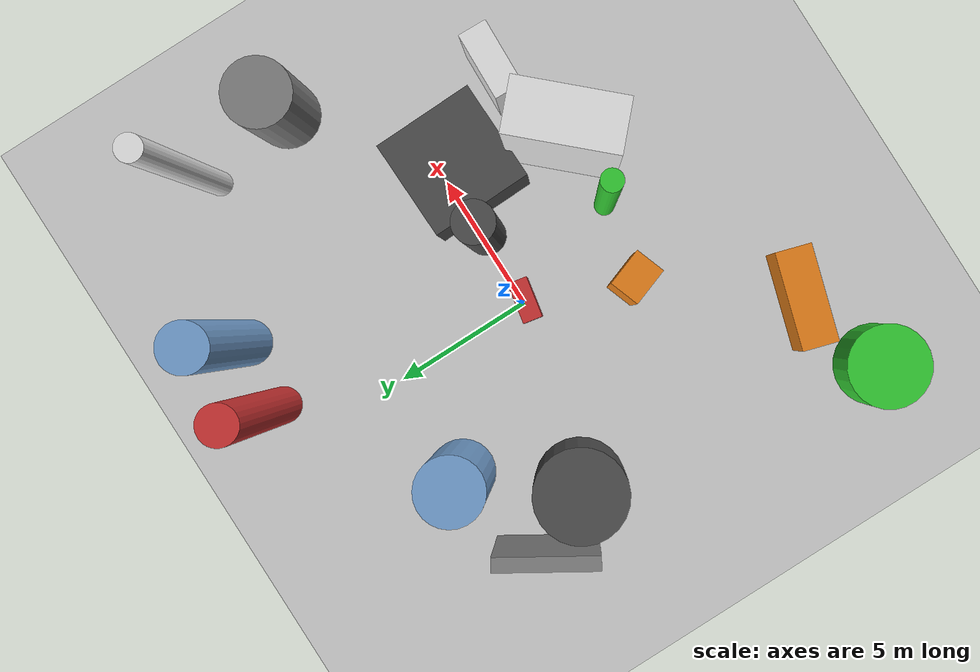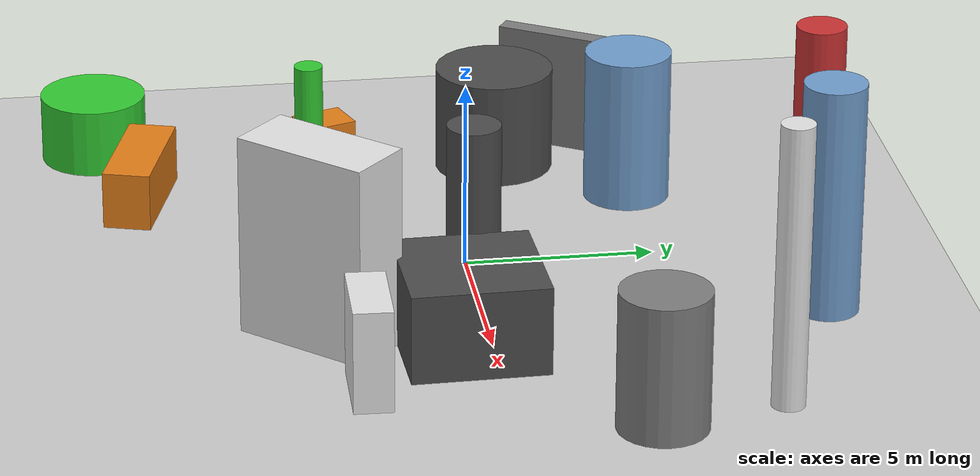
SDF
<?xml version='1.0'?>
<sdf version='1.6'>
  <world name='default'>
    <!-- Sun light -->
    <light name='sun' type='directional'>
      <cast_shadows>1</cast_shadows>
      <pose>0 0 10 0 0 0</pose>
      <diffuse>0.8 0.8 0.8 1</diffuse>
      <specular>0.2 0.2 0.2 1</specular>
      <attenuation>
        <range>1000</range>
        <constant>0.9</constant>
        <linear>0.01</linear>
        <quadratic>0.001</quadratic>
      </attenuation>
      <direction>-0.5 0.1 -0.9</direction>
    </light>

    <!-- Ground plane -->
    <model name='ground_plane'>
      <static>1</static>
      <link name='link'>
        <collision name='collision'>
          <geometry>
            <plane>
              <normal>0 0 1</normal>
              <size>100 100</size>
            </plane>
          </geometry>
          <surface>
            <contact>
              <collide_bitmask>65535</collide_bitmask>
              <ode/>
            </contact>
            <friction>
              <ode>
                <mu>100</mu>
                <mu2>50</mu2>
              </ode>
              <torsional><ode/></torsional>
            </friction>
            <bounce/>
          </surface>
          <max_contacts>10</max_contacts>
        </collision>
        <visual name='visual'>
          <cast_shadows>0</cast_shadows>
          <geometry>
            <plane>
              <normal>0 0 1</normal>
              <size>100 100</size>
            </plane>
          </geometry>
          <material>
            <script>
              <uri>file://media/materials/scripts/gazebo.material</uri>
              <n>Gazebo/Grey</n>
            </script>
          </material>
        </visual>
      </link>
    </model>

    <!-- Environment -->
    <magnetic_field>6e-06 2.3e-05 -4.2e-05</magnetic_field>
    <atmosphere type='adiabatic'/>
    <physics name='default_physics' default='0' type='ode'>
      <gravity>0 0 -9.8</gravity>
      <max_step_size>0.004</max_step_size>
      <real_time_factor>1</real_time_factor>
      <real_time_update_rate>250</real_time_update_rate>
    </physics>
    <scene>
      <ambient>0.4 0.4 0.4 1</ambient>
      <background>0.7 0.7 0.7 1</background>
      <shadows>1</shadows>
    </scene>
    <wind/>
    <spherical_coordinates>
      <surface_model>EARTH_WGS84</surface_model>
      <latitude_deg>0</latitude_deg>
      <longitude_deg>0</longitude_deg>
      <elevation>0</elevation>
      <heading_deg>0</heading_deg>
    </spherical_coordinates>

    <!-- ============ OBSTACLES (16) ============ -->
    <model name='obs_00'>
      <static>1</static>
      <link name='link'>
        <visual name='visual'>
          <geometry>
            <cylinder>
              <radius>1.1677</radius>
              <length>4.1838</length>
            </cylinder>
          </geometry>
          <material>
            <script>
              <n>Gazebo/Blue</n>
              <uri>file://media/materials/scripts/gazebo.material</uri>
            </script>
            <ambient>0.447 0.624 0.812 1</ambient>
          </material>
        </visual>
        <collision name='collision'>
          <geometry>
            <cylinder>
              <radius>1.1677</radius>
              <length>4.1838</length>
            </cylinder>
          </geometry>
          <max_contacts>10</max_contacts>
          <surface>
            <contact><ode/></contact>
            <bounce/>
            <friction>
              <ode><mu>1</mu><mu2>1</mu2></ode>
              <torsional><ode/></torsional>
            </friction>
          </surface>
        </collision>
      </link>
      <pose>-3.8478 4.9792 2.0919 0 0 2.5559</pose>
    </model>

    <model name='obs_01'>
      <static>1</static>
      <link name='link'>
        <visual name='visual'>
          <geometry>
            <cylinder>
              <radius>0.3645</radius>
              <length>6.4078</length>
            </cylinder>
          </geometry>
          <material>
            <script>
              <n>Gazebo/Green</n>
              <uri>file://media/materials/scripts/gazebo.material</uri>
            </script>
            <ambient>0.2 0.8 0.2 1</ambient>
          </material>
        </visual>
        <collision name='collision'>
          <geometry>
            <cylinder>
              <radius>0.3645</radius>
              <length>6.4078</length>
            </cylinder>
          </geometry>
          <max_contacts>10</max_contacts>
          <surface>
            <contact><ode/></contact>
            <bounce/>
            <friction>
              <ode><mu>1</mu><mu2>1</mu2></ode>
              <torsional><ode/></torsional>
            </friction>
          </surface>
        </collision>
      </link>
      <pose>1.3841 -4.2278 3.2039 0 0 0.7929</pose>
    </model>

    <model name='obs_02'>
      <static>1</static>
      <link name='link'>
        <visual name='visual'>
          <geometry>
            <box>
              <size>0.5040 3.5428 3.3099</size>
            </box>
          </geometry>
          <material>
            <script>
              <n>Gazebo/Grey</n>
              <uri>file://media/materials/scripts/gazebo.material</uri>
            </script>
            <ambient>0.5 0.5 0.5 1</ambient>
          </material>
        </visual>
        <collision name='collision'>
          <geometry>
            <box>
              <size>0.5040 3.5428 3.3099</size>
            </box>
          </geometry>
          <max_contacts>10</max_contacts>
          <surface>
            <contact><ode/></contact>
            <bounce/>
            <friction>
              <ode><mu>1</mu><mu2>1</mu2></ode>
              <torsional><ode/></torsional>
            </friction>
          </surface>
        </collision>
      </link>
      <pose>-7.5129 3.7736 1.6549 0 0 2.5916</pose>
    </model>

    <model name='obs_03'>
      <static>1</static>
      <link name='link'>
        <visual name='visual'>
          <geometry>
            <cylinder>
              <radius>0.8193</radius>
              <length>6.2951</length>
            </cylinder>
          </geometry>
          <material>
            <script>
              <n>Gazebo/Blue</n>
              <uri>file://media/materials/scripts/gazebo.material</uri>
            </script>
            <ambient>0.447 0.624 0.812 1</ambient>
          </material>
        </visual>
        <collision name='collision'>
          <geometry>
            <cylinder>
              <radius>0.8193</radius>
              <length>6.2951</length>
            </cylinder>
          </geometry>
          <max_contacts>10</max_contacts>
          <surface>
            <contact><ode/></contact>
            <bounce/>
            <friction>
              <ode><mu>1</mu><mu2>1</mu2></ode>
              <torsional><ode/></torsional>
            </friction>
          </surface>
        </collision>
      </link>
      <pose>3.9947 8.8535 3.1476 0 0 0.5893</pose>
    </model>

    <model name='obs_04'>
      <static>1</static>
      <link name='link'>
        <visual name='visual'>
          <geometry>
            <box>
              <size>0.6806 1.4347 1.6551</size>
            </box>
          </geometry>
          <material>
            <script>
              <n>Gazebo/Red</n>
              <uri>file://media/materials/scripts/gazebo.material</uri>
            </script>
            <ambient>0.8 0.2 0.2 1</ambient>
          </material>
        </visual>
        <collision name='collision'>
          <geometry>
            <box>
              <size>0.6806 1.4347 1.6551</size>
            </box>
          </geometry>
          <max_contacts>10</max_contacts>
          <surface>
            <contact><ode/></contact>
            <bounce/>
            <friction>
              <ode><mu>1</mu><mu2>1</mu2></ode>
              <torsional><ode/></torsional>
            </friction>
          </surface>
        </collision>
      </link>
      <pose>0.0094 -0.1241 0.8275 0 0 1.3887</pose>
    </model>

    <model name='obs_05'>
      <static>1</static>
      <link name='link'>
        <visual name='visual'>
          <geometry>
            <cylinder>
              <radius>1.4418</radius>
              <length>1.8500</length>
            </cylinder>
          </geometry>
          <material>
            <script>
              <n>Gazebo/Green</n>
              <uri>file://media/materials/scripts/gazebo.material</uri>
            </script>
            <ambient>0.2 0.8 0.2 1</ambient>
          </material>
        </visual>
        <collision name='collision'>
          <geometry>
            <cylinder>
              <radius>1.4418</radius>
              <length>1.8500</length>
            </cylinder>
          </geometry>
          <max_contacts>10</max_contacts>
          <surface>
            <contact><ode/></contact>
            <bounce/>
            <friction>
              <ode><mu>1</mu><mu2>1</mu2></ode>
              <torsional><ode/></torsional>
            </friction>
          </surface>
        </collision>
      </link>
      <pose>-8.3912 -9.2028 0.9250 0 0 1.3764</pose>
    </model>

    <model name='obs_06'>
      <static>1</static>
      <link name='link'>
        <visual name='visual'>
          <geometry>
            <box>
              <size>1.3375 1.0543 3.7542</size>
            </box>
          </geometry>
          <material>
            <script>
              <n>Gazebo/Orange</n>
              <uri>file://media/materials/scripts/gazebo.material</uri>
            </script>
            <ambient>0.9 0.5 0.1 1</ambient>
          </material>
        </visual>
        <collision name='collision'>
          <geometry>
            <box>
              <size>1.3375 1.0543 3.7542</size>
            </box>
          </geometry>
          <max_contacts>10</max_contacts>
          <surface>
            <contact><ode/></contact>
            <bounce/>
            <friction>
              <ode><mu>1</mu><mu2>1</mu2></ode>
              <torsional><ode/></torsional>
            </friction>
          </surface>
        </collision>
      </link>
      <pose>-1.3594 -3.5536 1.8771 0 0 1.9128</pose>
    </model>

    <model name='obs_07'>
      <static>1</static>
      <link name='link'>
        <visual name='visual'>
          <geometry>
            <box>
              <size>1.2865 3.4449 1.5673</size>
            </box>
          </geometry>
          <material>
            <script>
              <n>Gazebo/Orange</n>
              <uri>file://media/materials/scripts/gazebo.material</uri>
            </script>
            <ambient>0.9 0.5 0.1 1</ambient>
          </material>
        </visual>
        <collision name='collision'>
          <geometry>
            <box>
              <size>1.2865 3.4449 1.5673</size>
            </box>
          </geometry>
          <max_contacts>10</max_contacts>
          <surface>
            <contact><ode/></contact>
            <bounce/>
            <friction>
              <ode><mu>1</mu><mu2>1</mu2></ode>
              <torsional><ode/></torsional>
            </friction>
          </surface>
        </collision>
      </link>
      <pose>-4.9926 -8.1735 0.7837 0 0 1.2817</pose>
    </model>

    <model name='obs_08'>
      <static>1</static>
      <link name='link'>
        <visual name='visual'>
          <geometry>
            <cylinder>
              <radius>0.4348</radius>
              <length>7.5286</length>
            </cylinder>
          </geometry>
          <material>
            <script>
              <n>Gazebo/White</n>
              <uri>file://media/materials/scripts/gazebo.material</uri>
            </script>
            <ambient>0.9 0.9 0.9 1</ambient>
          </material>
        </visual>
        <collision name='collision'>
          <geometry>
            <cylinder>
              <radius>0.4348</radius>
              <length>7.5286</length>
            </cylinder>
          </geometry>
          <max_contacts>10</max_contacts>
          <surface>
            <contact><ode/></contact>
            <bounce/>
            <friction>
              <ode><mu>1</mu><mu2>1</mu2></ode>
              <torsional><ode/></torsional>
            </friction>
          </surface>
        </collision>
      </link>
      <pose>9.2382 6.7192 3.7643 0 0 2.0348</pose>
    </model>

    <model name='obs_09'>
      <static>1</static>
      <link name='link'>
        <visual name='visual'>
          <geometry>
            <cylinder>
              <radius>0.6558</radius>
              <length>6.8431</length>
            </cylinder>
          </geometry>
          <material>
            <script>
              <n>Gazebo/Red</n>
              <uri>file://media/materials/scripts/gazebo.material</uri>
            </script>
            <ambient>0.8 0.2 0.2 1</ambient>
          </material>
        </visual>
        <collision name='collision'>
          <geometry>
            <cylinder>
              <radius>0.6558</radius>
              <length>6.8431</length>
            </cylinder>
          </geometry>
          <max_contacts>10</max_contacts>
          <surface>
            <contact><ode/></contact>
            <bounce/>
            <friction>
              <ode><mu>1</mu><mu2>1</mu2></ode>
              <torsional><ode/></torsional>
            </friction>
          </surface>
        </collision>
      </link>
      <pose>1.5040 9.0157 3.4215 0 0 1.5987</pose>
    </model>

    <model name='obs_10'>
      <static>1</static>
      <link name='link'>
        <visual name='visual'>
          <geometry>
            <cylinder>
              <radius>1.1698</radius>
              <length>3.6851</length>
            </cylinder>
          </geometry>
          <material>
            <script>
              <n>Gazebo/Grey</n>
              <uri>file://media/materials/scripts/gazebo.material</uri>
            </script>
            <ambient>0.5 0.5 0.5 1</ambient>
          </material>
        </visual>
        <collision name='collision'>
          <geometry>
            <cylinder>
              <radius>1.1698</radius>
              <length>3.6851</length>
            </cylinder>
          </geometry>
          <max_contacts>10</max_contacts>
          <surface>
            <contact><ode/></contact>
            <bounce/>
            <friction>
              <ode><mu>1</mu><mu2>1</mu2></ode>
              <torsional><ode/></torsional>
            </friction>
          </surface>
        </collision>
      </link>
      <pose>9.9914 3.4456 1.8426 0 0 0.7657</pose>
    </model>

    <model name='obs_11'>
      <static>1</static>
      <link name='link'>
        <visual name='visual'>
          <geometry>
            <box>
              <size>3.5776 3.5241 2.3812</size>
            </box>
          </geometry>
          <material>
            <script>
              <n>Gazebo/DarkGrey</n>
              <uri>file://media/materials/scripts/gazebo.material</uri>
            </script>
            <ambient>0.3 0.3 0.3 1</ambient>
          </material>
        </visual>
        <collision name='collision'>
          <geometry>
            <box>
              <size>3.5776 3.5241 2.3812</size>
            </box>
          </geometry>
          <max_contacts>10</max_contacts>
          <surface>
            <contact><ode/></contact>
            <bounce/>
            <friction>
              <ode><mu>1</mu><mu2>1</mu2></ode>
              <torsional><ode/></torsional>
            </friction>
          </surface>
        </collision>
      </link>
      <pose>5.1254 -0.5900 1.1906 0 0 1.5967</pose>
    </model>

    <model name='obs_12'>
      <static>1</static>
      <link name='link'>
        <visual name='visual'>
          <geometry>
            <cylinder>
              <radius>1.6073</radius>
              <length>2.8702</length>
            </cylinder>
          </geometry>
          <material>
            <script>
              <n>Gazebo/DarkGrey</n>
              <uri>file://media/materials/scripts/gazebo.material</uri>
            </script>
            <ambient>0.3 0.3 0.3 1</ambient>
          </material>
        </visual>
        <collision name='collision'>
          <geometry>
            <cylinder>
              <radius>1.6073</radius>
              <length>2.8702</length>
            </cylinder>
          </geometry>
          <max_contacts>10</max_contacts>
          <surface>
            <contact><ode/></contact>
            <bounce/>
            <friction>
              <ode><mu>1</mu><mu2>1</mu2></ode>
              <torsional><ode/></torsional>
            </friction>
          </surface>
        </collision>
      </link>
      <pose>-6.3702 1.7066 1.4351 0 0 1.0677</pose>
    </model>

    <model name='obs_13'>
      <static>1</static>
      <link name='link'>
        <visual name='visual'>
          <geometry>
            <cylinder>
              <radius>0.7023</radius>
              <length>5.1086</length>
            </cylinder>
          </geometry>
          <material>
            <script>
              <n>Gazebo/DarkGrey</n>
              <uri>file://media/materials/scripts/gazebo.material</uri>
            </script>
            <ambient>0.3 0.3 0.3 1</ambient>
          </material>
        </visual>
        <collision name='collision'>
          <geometry>
            <cylinder>
              <radius>0.7023</radius>
              <length>5.1086</length>
            </cylinder>
          </geometry>
          <max_contacts>10</max_contacts>
          <surface>
            <contact><ode/></contact>
            <bounce/>
            <friction>
              <ode><mu>1</mu><mu2>1</mu2></ode>
              <torsional><ode/></torsional>
            </friction>
          </surface>
        </collision>
      </link>
      <pose>2.6957 -0.1655 2.5543 0 0 0.8886</pose>
    </model>

    <model name='obs_14'>
      <static>1</static>
      <link name='link'>
        <visual name='visual'>
          <geometry>
            <box>
              <size>1.0201 2.3850 2.7256</size>
            </box>
          </geometry>
          <material>
            <script>
              <n>Gazebo/White</n>
              <uri>file://media/materials/scripts/gazebo.material</uri>
            </script>
            <ambient>0.9 0.9 0.9 1</ambient>
          </material>
        </visual>
        <collision name='collision'>
          <geometry>
            <box>
              <size>1.0201 2.3850 2.7256</size>
            </box>
          </geometry>
          <max_contacts>10</max_contacts>
          <surface>
            <contact><ode/></contact>
            <bounce/>
            <friction>
              <ode><mu>1</mu><mu2>1</mu2></ode>
              <torsional><ode/></torsional>
            </friction>
          </surface>
        </collision>
      </link>
      <pose>7.1547 -3.4039 1.3628 0 0 1.5383</pose>
    </model>

    <model name='obs_15'>
      <static>1</static>
      <link name='link'>
        <visual name='visual'>
          <geometry>
            <box>
              <size>1.8202 3.7650 5.3480</size>
            </box>
          </geometry>
          <material>
            <script>
              <n>Gazebo/White</n>
              <uri>file://media/materials/scripts/gazebo.material</uri>
            </script>
            <ambient>0.9 0.9 0.9 1</ambient>
          </material>
        </visual>
        <collision name='collision'>
          <geometry>
            <box>
              <size>1.8202 3.7650 5.3480</size>
            </box>
          </geometry>
          <max_contacts>10</max_contacts>
          <surface>
            <contact><ode/></contact>
            <bounce/>
            <friction>
              <ode><mu>1</mu><mu2>1</mu2></ode>
              <torsional><ode/></torsional>
            </friction>
          </surface>
        </collision>
      </link>
      <pose>3.8735 -4.2356 2.6740 0 0 2.3966</pose>
    </model>

    <!-- GUI camera -->
    <gui fullscreen='0'>
      <camera name='user_camera'>
        <pose>-15 0 18 0 0.85 0.15</pose>
        <view_controller>orbit</view_controller>
        <projection_type>perspective</projection_type>
      </camera>
    </gui>
  </world>
</sdf>
